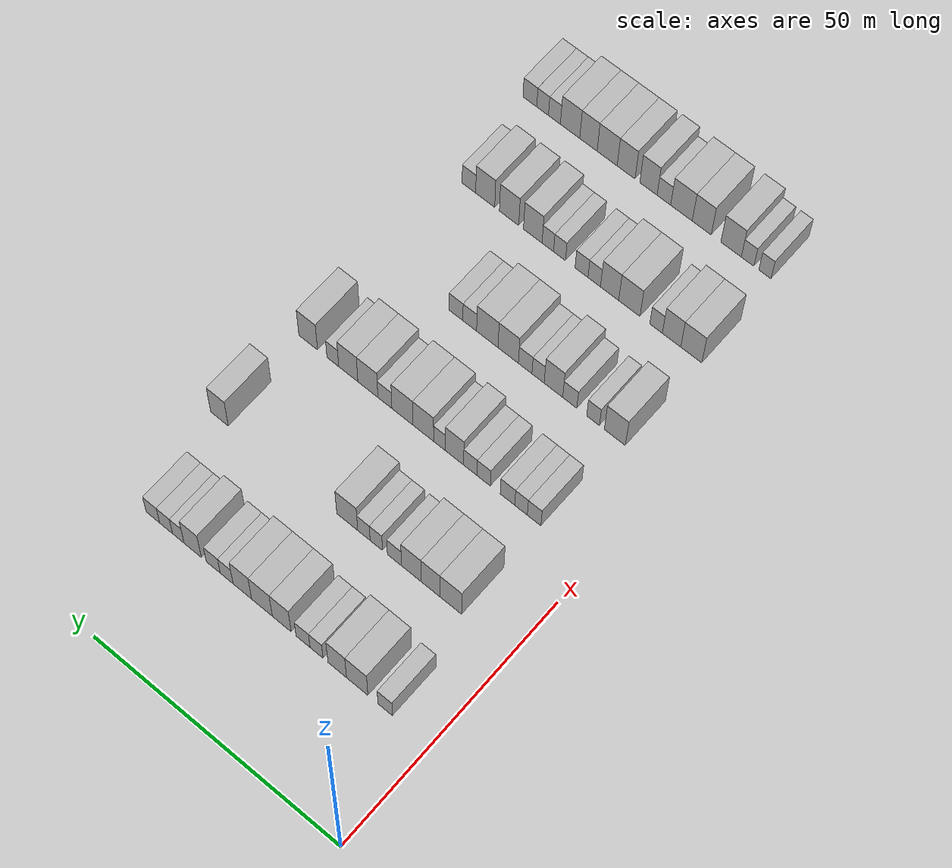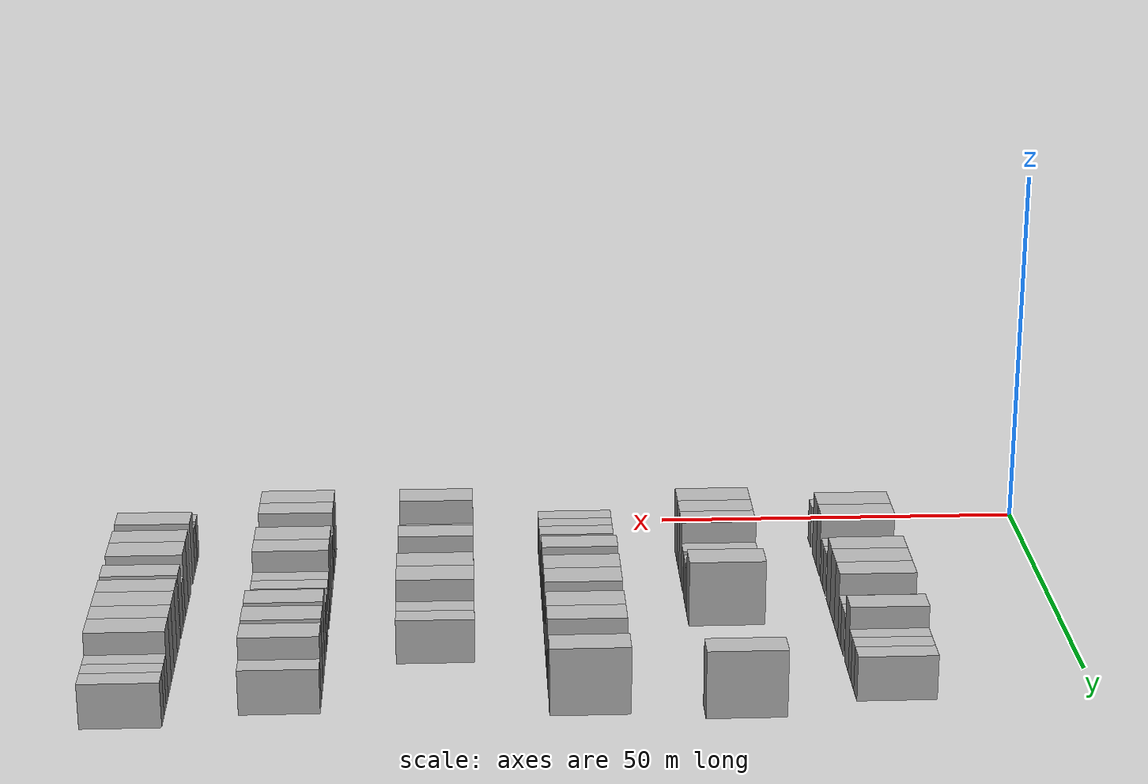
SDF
<sdf version="1.6">
 <world name="default">
  <model name="building_78">
   <static>1</static>
   <pose>25.0000 8.8354 0 0.000000 0.000000 0.000000</pose>
   <link name="link">
    <pose>0 0 3.00 0 0 0</pose>
    <collision name="collision"><geometry><box><size>10.0000 2.8979 6.0000</size></box></geometry></collision>
    <visual name="visual">
     <cast_shadows>0</cast_shadows>
     <geometry><box><size>10.0000 2.8979 6.0000</size></box></geometry>
     <material>
      <script>
       <uri>model://HANNAS_wall/materials/scripts</uri>
       <uri>model://HANNAS_wall/materials/textures</uri>
       <name>vrc/HANNAS_wall</name>
      </script>
     </material>
    </visual>
   </link>
  </model>
  <model name="building_79">
   <static>1</static>
   <pose>25.0000 14.4239 0 0.000000 0.000000 0.000000</pose>
   <link name="link">
    <pose>0 0 4.50 0 0 0</pose>
    <collision name="collision"><geometry><box><size>10.0000 4.2790 9.0000</size></box></geometry></collision>
    <visual name="visual">
     <cast_shadows>0</cast_shadows>
     <geometry><box><size>10.0000 4.2790 9.0000</size></box></geometry>
     <material>
      <script>
       <uri>model://HANNAS_wall/materials/scripts</uri>
       <uri>model://HANNAS_wall/materials/textures</uri>
       <name>vrc/HANNAS_wall</name>
      </script>
     </material>
    </visual>
   </link>
  </model>
  <model name="building_80">
   <static>1</static>
   <pose>25.0000 18.4285 0 0.000000 0.000000 0.000000</pose>
   <link name="link">
    <pose>0 0 4.50 0 0 0</pose>
    <collision name="collision"><geometry><box><size>10.0000 3.7302 9.0000</size></box></geometry></collision>
    <visual name="visual">
     <cast_shadows>0</cast_shadows>
     <geometry><box><size>10.0000 3.7302 9.0000</size></box></geometry>
     <material>
      <script>
       <uri>model://HANNAS_wall/materials/scripts</uri>
       <uri>model://HANNAS_wall/materials/textures</uri>
       <name>vrc/HANNAS_wall</name>
      </script>
     </material>
    </visual>
   </link>
  </model>
  <model name="building_81">
   <static>1</static>
   <pose>25.0000 22.6097 0 0.000000 0.000000 0.000000</pose>
   <link name="link">
    <pose>0 0 3.00 0 0 0</pose>
    <collision name="collision"><geometry><box><size>10.0000 2.6323 6.0000</size></box></geometry></collision>
    <visual name="visual">
     <cast_shadows>0</cast_shadows>
     <geometry><box><size>10.0000 2.6323 6.0000</size></box></geometry>
     <material>
      <script>
       <uri>model://HANNAS_wall/materials/scripts</uri>
       <uri>model://HANNAS_wall/materials/textures</uri>
       <name>vrc/HANNAS_wall</name>
      </script>
     </material>
    </visual>
   </link>
  </model>
  <model name="building_82">
   <static>1</static>
   <pose>25.0000 25.3507 0 0.000000 0.000000 0.000000</pose>
   <link name="link">
    <pose>0 0 3.00 0 0 0</pose>
    <collision name="collision"><geometry><box><size>10.0000 2.8498 6.0000</size></box></geometry></collision>
    <visual name="visual">
     <cast_shadows>0</cast_shadows>
     <geometry><box><size>10.0000 2.8498 6.0000</size></box></geometry>
     <material>
      <script>
       <uri>model://HANNAS_wall/materials/scripts</uri>
       <uri>model://HANNAS_wall/materials/textures</uri>
       <name>vrc/HANNAS_wall</name>
      </script>
     </material>
    </visual>
   </link>
  </model>
  <model name="building_83">
   <static>1</static>
   <pose>25.0000 29.6966 0 0.000000 0.000000 0.000000</pose>
   <link name="link">
    <pose>0 0 4.50 0 0 0</pose>
    <collision name="collision"><geometry><box><size>10.0000 3.8418 9.0000</size></box></geometry></collision>
    <visual name="visual">
     <cast_shadows>0</cast_shadows>
     <geometry><box><size>10.0000 3.8418 9.0000</size></box></geometry>
     <material>
      <script>
       <uri>model://HANNAS_wall/materials/scripts</uri>
       <uri>model://HANNAS_wall/materials/textures</uri>
       <name>vrc/HANNAS_wall</name>
      </script>
     </material>
    </visual>
   </link>
  </model>
  <model name="building_84">
   <static>1</static>
   <pose>25.0000 33.7455 0 0.000000 0.000000 0.000000</pose>
   <link name="link">
    <pose>0 0 4.50 0 0 0</pose>
    <collision name="collision"><geometry><box><size>10.0000 4.2562 9.0000</size></box></geometry></collision>
    <visual name="visual">
     <cast_shadows>0</cast_shadows>
     <geometry><box><size>10.0000 4.2562 9.0000</size></box></geometry>
     <material>
      <script>
       <uri>model://HANNAS_wall/materials/scripts</uri>
       <uri>model://HANNAS_wall/materials/textures</uri>
       <name>vrc/HANNAS_wall</name>
      </script>
     </material>
    </visual>
   </link>
  </model>
  <model name="building_85">
   <static>1</static>
   <pose>25.0000 37.7928 0 0.000000 0.000000 0.000000</pose>
   <link name="link">
    <pose>0 0 4.50 0 0 0</pose>
    <collision name="collision"><geometry><box><size>10.0000 3.8383 9.0000</size></box></geometry></collision>
    <visual name="visual">
     <cast_shadows>0</cast_shadows>
     <geometry><box><size>10.0000 3.8383 9.0000</size></box></geometry>
     <material>
      <script>
       <uri>model://HANNAS_wall/materials/scripts</uri>
       <uri>model://HANNAS_wall/materials/textures</uri>
       <name>vrc/HANNAS_wall</name>
      </script>
     </material>
    </visual>
   </link>
  </model>
  <model name="building_86">
   <static>1</static>
   <pose>25.0000 41.0383 0 0.000000 0.000000 0.000000</pose>
   <link name="link">
    <pose>0 0 3.00 0 0 0</pose>
    <collision name="collision"><geometry><box><size>10.0000 2.6528 6.0000</size></box></geometry></collision>
    <visual name="visual">
     <cast_shadows>0</cast_shadows>
     <geometry><box><size>10.0000 2.6528 6.0000</size></box></geometry>
     <material>
      <script>
       <uri>model://HANNAS_wall/materials/scripts</uri>
       <uri>model://HANNAS_wall/materials/textures</uri>
       <name>vrc/HANNAS_wall</name>
      </script>
     </material>
    </visual>
   </link>
  </model>
  <model name="building_87">
   <static>1</static>
   <pose>25.0000 43.8298 0 0.000000 0.000000 0.000000</pose>
   <link name="link">
    <pose>0 0 3.00 0 0 0</pose>
    <collision name="collision"><geometry><box><size>10.0000 2.9301 6.0000</size></box></geometry></collision>
    <visual name="visual">
     <cast_shadows>0</cast_shadows>
     <geometry><box><size>10.0000 2.9301 6.0000</size></box></geometry>
     <material>
      <script>
       <uri>model://HANNAS_wall/materials/scripts</uri>
       <uri>model://HANNAS_wall/materials/textures</uri>
       <name>vrc/HANNAS_wall</name>
      </script>
     </material>
    </visual>
   </link>
  </model>
  <model name="building_88">
   <static>1</static>
   <pose>25.0000 48.1031 0 0.000000 0.000000 0.000000</pose>
   <link name="link">
    <pose>0 0 4.50 0 0 0</pose>
    <collision name="collision"><geometry><box><size>10.0000 3.6164 9.0000</size></box></geometry></collision>
    <visual name="visual">
     <cast_shadows>0</cast_shadows>
     <geometry><box><size>10.0000 3.6164 9.0000</size></box></geometry>
     <material>
      <script>
       <uri>model://HANNAS_wall/materials/scripts</uri>
       <uri>model://HANNAS_wall/materials/textures</uri>
       <name>vrc/HANNAS_wall</name>
      </script>
     </material>
    </visual>
   </link>
  </model>
  <model name="building_89">
   <static>1</static>
   <pose>25.0000 51.1237 0 0.000000 0.000000 0.000000</pose>
   <link name="link">
    <pose>0 0 3.00 0 0 0</pose>
    <collision name="collision"><geometry><box><size>10.0000 2.4249 6.0000</size></box></geometry></collision>
    <visual name="visual">
     <cast_shadows>0</cast_shadows>
     <geometry><box><size>10.0000 2.4249 6.0000</size></box></geometry>
     <material>
      <script>
       <uri>model://HANNAS_wall/materials/scripts</uri>
       <uri>model://HANNAS_wall/materials/textures</uri>
       <name>vrc/HANNAS_wall</name>
      </script>
     </material>
    </visual>
   </link>
  </model>
  <model name="building_90">
   <static>1</static>
   <pose>25.0000 53.6947 0 0.000000 0.000000 0.000000</pose>
   <link name="link">
    <pose>0 0 3.00 0 0 0</pose>
    <collision name="collision"><geometry><box><size>10.0000 2.7171 6.0000</size></box></geometry></collision>
    <visual name="visual">
     <cast_shadows>0</cast_shadows>
     <geometry><box><size>10.0000 2.7171 6.0000</size></box></geometry>
     <material>
      <script>
       <uri>model://HANNAS_wall/materials/scripts</uri>
       <uri>model://HANNAS_wall/materials/textures</uri>
       <name>vrc/HANNAS_wall</name>
      </script>
     </material>
    </visual>
   </link>
  </model>
  <model name="building_91">
   <static>1</static>
   <pose>25.0000 56.4846 0 0.000000 0.000000 0.000000</pose>
   <link name="link">
    <pose>0 0 3.00 0 0 0</pose>
    <collision name="collision"><geometry><box><size>10.0000 2.8627 6.0000</size></box></geometry></collision>
    <visual name="visual">
     <cast_shadows>0</cast_shadows>
     <geometry><box><size>10.0000 2.8627 6.0000</size></box></geometry>
     <material>
      <script>
       <uri>model://HANNAS_wall/materials/scripts</uri>
       <uri>model://HANNAS_wall/materials/textures</uri>
       <name>vrc/HANNAS_wall</name>
      </script>
     </material>
    </visual>
   </link>
  </model>
  <model name="building_248">
   <static>1</static>
   <pose>44.0000 12.1565 0 0.000000 0.000000 0.000000</pose>
   <link name="link">
    <pose>0 0 4.50 0 0 0</pose>
    <collision name="collision"><geometry><box><size>10.0000 4.3820 9.0000</size></box></geometry></collision>
    <visual name="visual">
     <cast_shadows>0</cast_shadows>
     <geometry><box><size>10.0000 4.3820 9.0000</size></box></geometry>
     <material>
      <script>
       <uri>model://HANNAS_wall/materials/scripts</uri>
       <uri>model://HANNAS_wall/materials/textures</uri>
       <name>vrc/HANNAS_wall</name>
      </script>
     </material>
    </visual>
   </link>
  </model>
  <model name="building_249">
   <static>1</static>
   <pose>44.0000 16.2262 0 0.000000 0.000000 0.000000</pose>
   <link name="link">
    <pose>0 0 4.50 0 0 0</pose>
    <collision name="collision"><geometry><box><size>10.0000 3.7574 9.0000</size></box></geometry></collision>
    <visual name="visual">
     <cast_shadows>0</cast_shadows>
     <geometry><box><size>10.0000 3.7574 9.0000</size></box></geometry>
     <material>
      <script>
       <uri>model://HANNAS_wall/materials/scripts</uri>
       <uri>model://HANNAS_wall/materials/textures</uri>
       <name>vrc/HANNAS_wall</name>
      </script>
     </material>
    </visual>
   </link>
  </model>
  <model name="building_250">
   <static>1</static>
   <pose>44.0000 20.0991 0 0.000000 0.000000 0.000000</pose>
   <link name="link">
    <pose>0 0 4.50 0 0 0</pose>
    <collision name="collision"><geometry><box><size>10.0000 3.9885 9.0000</size></box></geometry></collision>
    <visual name="visual">
     <cast_shadows>0</cast_shadows>
     <geometry><box><size>10.0000 3.9885 9.0000</size></box></geometry>
     <material>
      <script>
       <uri>model://HANNAS_wall/materials/scripts</uri>
       <uri>model://HANNAS_wall/materials/textures</uri>
       <name>vrc/HANNAS_wall</name>
      </script>
     </material>
    </visual>
   </link>
  </model>
  <model name="building_251">
   <static>1</static>
   <pose>44.0000 23.5281 0 0.000000 0.000000 0.000000</pose>
   <link name="link">
    <pose>0 0 3.00 0 0 0</pose>
    <collision name="collision"><geometry><box><size>10.0000 2.8695 6.0000</size></box></geometry></collision>
    <visual name="visual">
     <cast_shadows>0</cast_shadows>
     <geometry><box><size>10.0000 2.8695 6.0000</size></box></geometry>
     <material>
      <script>
       <uri>model://HANNAS_wall/materials/scripts</uri>
       <uri>model://HANNAS_wall/materials/textures</uri>
       <name>vrc/HANNAS_wall</name>
      </script>
     </material>
    </visual>
   </link>
  </model>
  <model name="building_252">
   <static>1</static>
   <pose>44.0000 27.2250 0 0.000000 0.000000 0.000000</pose>
   <link name="link">
    <pose>0 0 3.00 0 0 0</pose>
    <collision name="collision"><geometry><box><size>10.0000 2.5243 6.0000</size></box></geometry></collision>
    <visual name="visual">
     <cast_shadows>0</cast_shadows>
     <geometry><box><size>10.0000 2.5243 6.0000</size></box></geometry>
     <material>
      <script>
       <uri>model://HANNAS_wall/materials/scripts</uri>
       <uri>model://HANNAS_wall/materials/textures</uri>
       <name>vrc/HANNAS_wall</name>
      </script>
     </material>
    </visual>
   </link>
  </model>
  <model name="building_253">
   <static>1</static>
   <pose>44.0000 29.7634 0 0.000000 0.000000 0.000000</pose>
   <link name="link">
    <pose>0 0 3.00 0 0 0</pose>
    <collision name="collision"><geometry><box><size>10.0000 2.5524 6.0000</size></box></geometry></collision>
    <visual name="visual">
     <cast_shadows>0</cast_shadows>
     <geometry><box><size>10.0000 2.5524 6.0000</size></box></geometry>
     <material>
      <script>
       <uri>model://HANNAS_wall/materials/scripts</uri>
       <uri>model://HANNAS_wall/materials/textures</uri>
       <name>vrc/HANNAS_wall</name>
      </script>
     </material>
    </visual>
   </link>
  </model>
  <model name="building_254">
   <static>1</static>
   <pose>44.0000 33.1895 0 0.000000 0.000000 0.000000</pose>
   <link name="link">
    <pose>0 0 4.50 0 0 0</pose>
    <collision name="collision"><geometry><box><size>10.0000 4.2998 9.0000</size></box></geometry></collision>
    <visual name="visual">
     <cast_shadows>0</cast_shadows>
     <geometry><box><size>10.0000 4.2998 9.0000</size></box></geometry>
     <material>
      <script>
       <uri>model://HANNAS_wall/materials/scripts</uri>
       <uri>model://HANNAS_wall/materials/textures</uri>
       <name>vrc/HANNAS_wall</name>
      </script>
     </material>
    </visual>
   </link>
  </model>
  <model name="building_255">
   <static>1</static>
   <pose>44.0000 59.9753 0 0.000000 0.000000 0.000000</pose>
   <link name="link">
    <pose>0 0 4.50 0 0 0</pose>
    <collision name="collision"><geometry><box><size>10.0000 3.7572 9.0000</size></box></geometry></collision>
    <visual name="visual">
     <cast_shadows>0</cast_shadows>
     <geometry><box><size>10.0000 3.7572 9.0000</size></box></geometry>
     <material>
      <script>
       <uri>model://HANNAS_wall/materials/scripts</uri>
       <uri>model://HANNAS_wall/materials/textures</uri>
       <name>vrc/HANNAS_wall</name>
      </script>
     </material>
    </visual>
   </link>
  </model>
  <model name="building_419">
   <static>1</static>
   <pose>63.0000 11.4348 0 0.000000 0.000000 0.000000</pose>
   <link name="link">
    <pose>0 0 3.00 0 0 0</pose>
    <collision name="collision"><geometry><box><size>10.0000 2.7312 6.0000</size></box></geometry></collision>
    <visual name="visual">
     <cast_shadows>0</cast_shadows>
     <geometry><box><size>10.0000 2.7312 6.0000</size></box></geometry>
     <material>
      <script>
       <uri>model://HANNAS_wall/materials/scripts</uri>
       <uri>model://HANNAS_wall/materials/textures</uri>
       <name>vrc/HANNAS_wall</name>
      </script>
     </material>
    </visual>
   </link>
  </model>
  <model name="building_420">
   <static>1</static>
   <pose>63.0000 14.0735 0 0.000000 0.000000 0.000000</pose>
   <link name="link">
    <pose>0 0 3.00 0 0 0</pose>
    <collision name="collision"><geometry><box><size>10.0000 2.5461 6.0000</size></box></geometry></collision>
    <visual name="visual">
     <cast_shadows>0</cast_shadows>
     <geometry><box><size>10.0000 2.5461 6.0000</size></box></geometry>
     <material>
      <script>
       <uri>model://HANNAS_wall/materials/scripts</uri>
       <uri>model://HANNAS_wall/materials/textures</uri>
       <name>vrc/HANNAS_wall</name>
      </script>
     </material>
    </visual>
   </link>
  </model>
  <model name="building_421">
   <static>1</static>
   <pose>63.0000 16.8148 0 0.000000 0.000000 0.000000</pose>
   <link name="link">
    <pose>0 0 3.00 0 0 0</pose>
    <collision name="collision"><geometry><box><size>10.0000 2.9365 6.0000</size></box></geometry></collision>
    <visual name="visual">
     <cast_shadows>0</cast_shadows>
     <geometry><box><size>10.0000 2.9365 6.0000</size></box></geometry>
     <material>
      <script>
       <uri>model://HANNAS_wall/materials/scripts</uri>
       <uri>model://HANNAS_wall/materials/textures</uri>
       <name>vrc/HANNAS_wall</name>
      </script>
     </material>
    </visual>
   </link>
  </model>
  <model name="building_422">
   <static>1</static>
   <pose>63.0000 21.6470 0 0.000000 0.000000 0.000000</pose>
   <link name="link">
    <pose>0 0 3.00 0 0 0</pose>
    <collision name="collision"><geometry><box><size>10.0000 2.7280 6.0000</size></box></geometry></collision>
    <visual name="visual">
     <cast_shadows>0</cast_shadows>
     <geometry><box><size>10.0000 2.7280 6.0000</size></box></geometry>
     <material>
      <script>
       <uri>model://HANNAS_wall/materials/scripts</uri>
       <uri>model://HANNAS_wall/materials/textures</uri>
       <name>vrc/HANNAS_wall</name>
      </script>
     </material>
    </visual>
   </link>
  </model>
  <model name="building_423">
   <static>1</static>
   <pose>63.0000 24.3836 0 0.000000 0.000000 0.000000</pose>
   <link name="link">
    <pose>0 0 3.00 0 0 0</pose>
    <collision name="collision"><geometry><box><size>10.0000 2.7452 6.0000</size></box></geometry></collision>
    <visual name="visual">
     <cast_shadows>0</cast_shadows>
     <geometry><box><size>10.0000 2.7452 6.0000</size></box></geometry>
     <material>
      <script>
       <uri>model://HANNAS_wall/materials/scripts</uri>
       <uri>model://HANNAS_wall/materials/textures</uri>
       <name>vrc/HANNAS_wall</name>
      </script>
     </material>
    </visual>
   </link>
  </model>
  <model name="building_424">
   <static>1</static>
   <pose>63.0000 27.6238 0 0.000000 0.000000 0.000000</pose>
   <link name="link">
    <pose>0 0 4.50 0 0 0</pose>
    <collision name="collision"><geometry><box><size>10.0000 3.7352 9.0000</size></box></geometry></collision>
    <visual name="visual">
     <cast_shadows>0</cast_shadows>
     <geometry><box><size>10.0000 3.7352 9.0000</size></box></geometry>
     <material>
      <script>
       <uri>model://HANNAS_wall/materials/scripts</uri>
       <uri>model://HANNAS_wall/materials/textures</uri>
       <name>vrc/HANNAS_wall</name>
      </script>
     </material>
    </visual>
   </link>
  </model>
  <model name="building_425">
   <static>1</static>
   <pose>63.0000 30.7046 0 0.000000 0.000000 0.000000</pose>
   <link name="link">
    <pose>0 0 3.00 0 0 0</pose>
    <collision name="collision"><geometry><box><size>10.0000 2.4265 6.0000</size></box></geometry></collision>
    <visual name="visual">
     <cast_shadows>0</cast_shadows>
     <geometry><box><size>10.0000 2.4265 6.0000</size></box></geometry>
     <material>
      <script>
       <uri>model://HANNAS_wall/materials/scripts</uri>
       <uri>model://HANNAS_wall/materials/textures</uri>
       <name>vrc/HANNAS_wall</name>
      </script>
     </material>
    </visual>
   </link>
  </model>
  <model name="building_426">
   <static>1</static>
   <pose>63.0000 34.0472 0 0.000000 0.000000 0.000000</pose>
   <link name="link">
    <pose>0 0 4.50 0 0 0</pose>
    <collision name="collision"><geometry><box><size>10.0000 4.2586 9.0000</size></box></geometry></collision>
    <visual name="visual">
     <cast_shadows>0</cast_shadows>
     <geometry><box><size>10.0000 4.2586 9.0000</size></box></geometry>
     <material>
      <script>
       <uri>model://HANNAS_wall/materials/scripts</uri>
       <uri>model://HANNAS_wall/materials/textures</uri>
       <name>vrc/HANNAS_wall</name>
      </script>
     </material>
    </visual>
   </link>
  </model>
  <model name="building_427">
   <static>1</static>
   <pose>63.0000 38.3797 0 0.000000 0.000000 0.000000</pose>
   <link name="link">
    <pose>0 0 4.50 0 0 0</pose>
    <collision name="collision"><geometry><box><size>10.0000 4.4065 9.0000</size></box></geometry></collision>
    <visual name="visual">
     <cast_shadows>0</cast_shadows>
     <geometry><box><size>10.0000 4.4065 9.0000</size></box></geometry>
     <material>
      <script>
       <uri>model://HANNAS_wall/materials/scripts</uri>
       <uri>model://HANNAS_wall/materials/textures</uri>
       <name>vrc/HANNAS_wall</name>
      </script>
     </material>
    </visual>
   </link>
  </model>
  <model name="building_428">
   <static>1</static>
   <pose>63.0000 42.0469 0 0.000000 0.000000 0.000000</pose>
   <link name="link">
    <pose>0 0 3.00 0 0 0</pose>
    <collision name="collision"><geometry><box><size>10.0000 2.9278 6.0000</size></box></geometry></collision>
    <visual name="visual">
     <cast_shadows>0</cast_shadows>
     <geometry><box><size>10.0000 2.9278 6.0000</size></box></geometry>
     <material>
      <script>
       <uri>model://HANNAS_wall/materials/scripts</uri>
       <uri>model://HANNAS_wall/materials/textures</uri>
       <name>vrc/HANNAS_wall</name>
      </script>
     </material>
    </visual>
   </link>
  </model>
  <model name="building_429">
   <static>1</static>
   <pose>63.0000 45.6141 0 0.000000 0.000000 0.000000</pose>
   <link name="link">
    <pose>0 0 4.50 0 0 0</pose>
    <collision name="collision"><geometry><box><size>10.0000 4.2065 9.0000</size></box></geometry></collision>
    <visual name="visual">
     <cast_shadows>0</cast_shadows>
     <geometry><box><size>10.0000 4.2065 9.0000</size></box></geometry>
     <material>
      <script>
       <uri>model://HANNAS_wall/materials/scripts</uri>
       <uri>model://HANNAS_wall/materials/textures</uri>
       <name>vrc/HANNAS_wall</name>
      </script>
     </material>
    </visual>
   </link>
  </model>
  <model name="building_430">
   <static>1</static>
   <pose>63.0000 49.7347 0 0.000000 0.000000 0.000000</pose>
   <link name="link">
    <pose>0 0 4.50 0 0 0</pose>
    <collision name="collision"><geometry><box><size>10.0000 4.0347 9.0000</size></box></geometry></collision>
    <visual name="visual">
     <cast_shadows>0</cast_shadows>
     <geometry><box><size>10.0000 4.0347 9.0000</size></box></geometry>
     <material>
      <script>
       <uri>model://HANNAS_wall/materials/scripts</uri>
       <uri>model://HANNAS_wall/materials/textures</uri>
       <name>vrc/HANNAS_wall</name>
      </script>
     </material>
    </visual>
   </link>
  </model>
  <model name="building_431">
   <static>1</static>
   <pose>63.0000 52.9988 0 0.000000 0.000000 0.000000</pose>
   <link name="link">
    <pose>0 0 3.00 0 0 0</pose>
    <collision name="collision"><geometry><box><size>10.0000 2.4934 6.0000</size></box></geometry></collision>
    <visual name="visual">
     <cast_shadows>0</cast_shadows>
     <geometry><box><size>10.0000 2.4934 6.0000</size></box></geometry>
     <material>
      <script>
       <uri>model://HANNAS_wall/materials/scripts</uri>
       <uri>model://HANNAS_wall/materials/textures</uri>
       <name>vrc/HANNAS_wall</name>
      </script>
     </material>
    </visual>
   </link>
  </model>
  <model name="building_432">
   <static>1</static>
   <pose>63.0000 58.2437 0 0.000000 0.000000 0.000000</pose>
   <link name="link">
    <pose>0 0 4.50 0 0 0</pose>
    <collision name="collision"><geometry><box><size>10.0000 3.9964 9.0000</size></box></geometry></collision>
    <visual name="visual">
     <cast_shadows>0</cast_shadows>
     <geometry><box><size>10.0000 3.9964 9.0000</size></box></geometry>
     <material>
      <script>
       <uri>model://HANNAS_wall/materials/scripts</uri>
       <uri>model://HANNAS_wall/materials/textures</uri>
       <name>vrc/HANNAS_wall</name>
      </script>
     </material>
    </visual>
   </link>
  </model>
  <model name="building_603">
   <static>1</static>
   <pose>82.0000 10.7911 0 0.000000 0.000000 0.000000</pose>
   <link name="link">
    <pose>0 0 4.50 0 0 0</pose>
    <collision name="collision"><geometry><box><size>10.0000 4.2556 9.0000</size></box></geometry></collision>
    <visual name="visual">
     <cast_shadows>0</cast_shadows>
     <geometry><box><size>10.0000 4.2556 9.0000</size></box></geometry>
     <material>
      <script>
       <uri>model://HANNAS_wall/materials/scripts</uri>
       <uri>model://HANNAS_wall/materials/textures</uri>
       <name>vrc/HANNAS_wall</name>
      </script>
     </material>
    </visual>
   </link>
  </model>
  <model name="building_604">
   <static>1</static>
   <pose>82.0000 15.2117 0 0.000000 0.000000 0.000000</pose>
   <link name="link">
    <pose>0 0 3.00 0 0 0</pose>
    <collision name="collision"><geometry><box><size>10.0000 2.5856 6.0000</size></box></geometry></collision>
    <visual name="visual">
     <cast_shadows>0</cast_shadows>
     <geometry><box><size>10.0000 2.5856 6.0000</size></box></geometry>
     <material>
      <script>
       <uri>model://HANNAS_wall/materials/scripts</uri>
       <uri>model://HANNAS_wall/materials/textures</uri>
       <name>vrc/HANNAS_wall</name>
      </script>
     </material>
    </visual>
   </link>
  </model>
  <model name="building_605">
   <static>1</static>
   <pose>82.0000 19.9462 0 0.000000 0.000000 0.000000</pose>
   <link name="link">
    <pose>0 0 3.00 0 0 0</pose>
    <collision name="collision"><geometry><box><size>10.0000 2.8834 6.0000</size></box></geometry></collision>
    <visual name="visual">
     <cast_shadows>0</cast_shadows>
     <geometry><box><size>10.0000 2.8834 6.0000</size></box></geometry>
     <material>
      <script>
       <uri>model://HANNAS_wall/materials/scripts</uri>
       <uri>model://HANNAS_wall/materials/textures</uri>
       <name>vrc/HANNAS_wall</name>
      </script>
     </material>
    </visual>
   </link>
  </model>
  <model name="building_606">
   <static>1</static>
   <pose>82.0000 23.2875 0 0.000000 0.000000 0.000000</pose>
   <link name="link">
    <pose>0 0 4.50 0 0 0</pose>
    <collision name="collision"><geometry><box><size>10.0000 3.7993 9.0000</size></box></geometry></collision>
    <visual name="visual">
     <cast_shadows>0</cast_shadows>
     <geometry><box><size>10.0000 3.7993 9.0000</size></box></geometry>
     <material>
      <script>
       <uri>model://HANNAS_wall/materials/scripts</uri>
       <uri>model://HANNAS_wall/materials/textures</uri>
       <name>vrc/HANNAS_wall</name>
      </script>
     </material>
    </visual>
   </link>
  </model>
  <model name="building_607">
   <static>1</static>
   <pose>82.0000 26.4459 0 0.000000 0.000000 0.000000</pose>
   <link name="link">
    <pose>0 0 3.00 0 0 0</pose>
    <collision name="collision"><geometry><box><size>10.0000 2.5176 6.0000</size></box></geometry></collision>
    <visual name="visual">
     <cast_shadows>0</cast_shadows>
     <geometry><box><size>10.0000 2.5176 6.0000</size></box></geometry>
     <material>
      <script>
       <uri>model://HANNAS_wall/materials/scripts</uri>
       <uri>model://HANNAS_wall/materials/textures</uri>
       <name>vrc/HANNAS_wall</name>
      </script>
     </material>
    </visual>
   </link>
  </model>
  <model name="building_608">
   <static>1</static>
   <pose>82.0000 29.1063 0 0.000000 0.000000 0.000000</pose>
   <link name="link">
    <pose>0 0 3.00 0 0 0</pose>
    <collision name="collision"><geometry><box><size>10.0000 2.8032 6.0000</size></box></geometry></collision>
    <visual name="visual">
     <cast_shadows>0</cast_shadows>
     <geometry><box><size>10.0000 2.8032 6.0000</size></box></geometry>
     <material>
      <script>
       <uri>model://HANNAS_wall/materials/scripts</uri>
       <uri>model://HANNAS_wall/materials/textures</uri>
       <name>vrc/HANNAS_wall</name>
      </script>
     </material>
    </visual>
   </link>
  </model>
  <model name="building_609">
   <static>1</static>
   <pose>82.0000 32.6181 0 0.000000 0.000000 0.000000</pose>
   <link name="link">
    <pose>0 0 4.50 0 0 0</pose>
    <collision name="collision"><geometry><box><size>10.0000 4.2204 9.0000</size></box></geometry></collision>
    <visual name="visual">
     <cast_shadows>0</cast_shadows>
     <geometry><box><size>10.0000 4.2204 9.0000</size></box></geometry>
     <material>
      <script>
       <uri>model://HANNAS_wall/materials/scripts</uri>
       <uri>model://HANNAS_wall/materials/textures</uri>
       <name>vrc/HANNAS_wall</name>
      </script>
     </material>
    </visual>
   </link>
  </model>
  <model name="building_610">
   <static>1</static>
   <pose>82.0000 36.9625 0 0.000000 0.000000 0.000000</pose>
   <link name="link">
    <pose>0 0 4.50 0 0 0</pose>
    <collision name="collision"><geometry><box><size>10.0000 4.4684 9.0000</size></box></geometry></collision>
    <visual name="visual">
     <cast_shadows>0</cast_shadows>
     <geometry><box><size>10.0000 4.4684 9.0000</size></box></geometry>
     <material>
      <script>
       <uri>model://HANNAS_wall/materials/scripts</uri>
       <uri>model://HANNAS_wall/materials/textures</uri>
       <name>vrc/HANNAS_wall</name>
      </script>
     </material>
    </visual>
   </link>
  </model>
  <model name="building_611">
   <static>1</static>
   <pose>82.0000 40.6374 0 0.000000 0.000000 0.000000</pose>
   <link name="link">
    <pose>0 0 3.00 0 0 0</pose>
    <collision name="collision"><geometry><box><size>10.0000 2.8814 6.0000</size></box></geometry></collision>
    <visual name="visual">
     <cast_shadows>0</cast_shadows>
     <geometry><box><size>10.0000 2.8814 6.0000</size></box></geometry>
     <material>
      <script>
       <uri>model://HANNAS_wall/materials/scripts</uri>
       <uri>model://HANNAS_wall/materials/textures</uri>
       <name>vrc/HANNAS_wall</name>
      </script>
     </material>
    </visual>
   </link>
  </model>
  <model name="building_612">
   <static>1</static>
   <pose>82.0000 43.5106 0 0.000000 0.000000 0.000000</pose>
   <link name="link">
    <pose>0 0 3.00 0 0 0</pose>
    <collision name="collision"><geometry><box><size>10.0000 2.8649 6.0000</size></box></geometry></collision>
    <visual name="visual">
     <cast_shadows>0</cast_shadows>
     <geometry><box><size>10.0000 2.8649 6.0000</size></box></geometry>
     <material>
      <script>
       <uri>model://HANNAS_wall/materials/scripts</uri>
       <uri>model://HANNAS_wall/materials/textures</uri>
       <name>vrc/HANNAS_wall</name>
      </script>
     </material>
    </visual>
   </link>
  </model>
  <model name="building_768">
   <static>1</static>
   <pose>101.0000 10.5797 0 0.000000 0.000000 0.000000</pose>
   <link name="link">
    <pose>0 0 4.50 0 0 0</pose>
    <collision name="collision"><geometry><box><size>10.0000 4.2688 9.0000</size></box></geometry></collision>
    <visual name="visual">
     <cast_shadows>0</cast_shadows>
     <geometry><box><size>10.0000 4.2688 9.0000</size></box></geometry>
     <material>
      <script>
       <uri>model://HANNAS_wall/materials/scripts</uri>
       <uri>model://HANNAS_wall/materials/textures</uri>
       <name>vrc/HANNAS_wall</name>
      </script>
     </material>
    </visual>
   </link>
  </model>
  <model name="building_769">
   <static>1</static>
   <pose>101.0000 14.5865 0 0.000000 0.000000 0.000000</pose>
   <link name="link">
    <pose>0 0 4.50 0 0 0</pose>
    <collision name="collision"><geometry><box><size>10.0000 3.7448 9.0000</size></box></geometry></collision>
    <visual name="visual">
     <cast_shadows>0</cast_shadows>
     <geometry><box><size>10.0000 3.7448 9.0000</size></box></geometry>
     <material>
      <script>
       <uri>model://HANNAS_wall/materials/scripts</uri>
       <uri>model://HANNAS_wall/materials/textures</uri>
       <name>vrc/HANNAS_wall</name>
      </script>
     </material>
    </visual>
   </link>
  </model>
  <model name="building_770">
   <static>1</static>
   <pose>101.0000 17.7500 0 0.000000 0.000000 0.000000</pose>
   <link name="link">
    <pose>0 0 3.00 0 0 0</pose>
    <collision name="collision"><geometry><box><size>10.0000 2.5822 6.0000</size></box></geometry></collision>
    <visual name="visual">
     <cast_shadows>0</cast_shadows>
     <geometry><box><size>10.0000 2.5822 6.0000</size></box></geometry>
     <material>
      <script>
       <uri>model://HANNAS_wall/materials/scripts</uri>
       <uri>model://HANNAS_wall/materials/textures</uri>
       <name>vrc/HANNAS_wall</name>
      </script>
     </material>
    </visual>
   </link>
  </model>
  <model name="building_771">
   <static>1</static>
   <pose>101.0000 23.2366 0 0.000000 0.000000 0.000000</pose>
   <link name="link">
    <pose>0 0 4.50 0 0 0</pose>
    <collision name="collision"><geometry><box><size>10.0000 4.3911 9.0000</size></box></geometry></collision>
    <visual name="visual">
     <cast_shadows>0</cast_shadows>
     <geometry><box><size>10.0000 4.3911 9.0000</size></box></geometry>
     <material>
      <script>
       <uri>model://HANNAS_wall/materials/scripts</uri>
       <uri>model://HANNAS_wall/materials/textures</uri>
       <name>vrc/HANNAS_wall</name>
      </script>
     </material>
    </visual>
   </link>
  </model>
  <model name="building_772">
   <static>1</static>
   <pose>101.0000 27.3190 0 0.000000 0.000000 0.000000</pose>
   <link name="link">
    <pose>0 0 4.50 0 0 0</pose>
    <collision name="collision"><geometry><box><size>10.0000 3.7736 9.0000</size></box></geometry></collision>
    <visual name="visual">
     <cast_shadows>0</cast_shadows>
     <geometry><box><size>10.0000 3.7736 9.0000</size></box></geometry>
     <material>
      <script>
       <uri>model://HANNAS_wall/materials/scripts</uri>
       <uri>model://HANNAS_wall/materials/textures</uri>
       <name>vrc/HANNAS_wall</name>
      </script>
     </material>
    </visual>
   </link>
  </model>
  <model name="building_773">
   <static>1</static>
   <pose>101.0000 30.4967 0 0.000000 0.000000 0.000000</pose>
   <link name="link">
    <pose>0 0 3.00 0 0 0</pose>
    <collision name="collision"><geometry><box><size>10.0000 2.5818 6.0000</size></box></geometry></collision>
    <visual name="visual">
     <cast_shadows>0</cast_shadows>
     <geometry><box><size>10.0000 2.5818 6.0000</size></box></geometry>
     <material>
      <script>
       <uri>model://HANNAS_wall/materials/scripts</uri>
       <uri>model://HANNAS_wall/materials/textures</uri>
       <name>vrc/HANNAS_wall</name>
      </script>
     </material>
    </visual>
   </link>
  </model>
  <model name="building_774">
   <static>1</static>
   <pose>101.0000 33.1427 0 0.000000 0.000000 0.000000</pose>
   <link name="link">
    <pose>0 0 3.00 0 0 0</pose>
    <collision name="collision"><geometry><box><size>10.0000 2.7103 6.0000</size></box></geometry></collision>
    <visual name="visual">
     <cast_shadows>0</cast_shadows>
     <geometry><box><size>10.0000 2.7103 6.0000</size></box></geometry>
     <material>
      <script>
       <uri>model://HANNAS_wall/materials/scripts</uri>
       <uri>model://HANNAS_wall/materials/textures</uri>
       <name>vrc/HANNAS_wall</name>
      </script>
     </material>
    </visual>
   </link>
  </model>
  <model name="building_775">
   <static>1</static>
   <pose>101.0000 37.7455 0 0.000000 0.000000 0.000000</pose>
   <link name="link">
    <pose>0 0 3.00 0 0 0</pose>
    <collision name="collision"><geometry><box><size>10.0000 2.4952 6.0000</size></box></geometry></collision>
    <visual name="visual">
     <cast_shadows>0</cast_shadows>
     <geometry><box><size>10.0000 2.4952 6.0000</size></box></geometry>
     <material>
      <script>
       <uri>model://HANNAS_wall/materials/scripts</uri>
       <uri>model://HANNAS_wall/materials/textures</uri>
       <name>vrc/HANNAS_wall</name>
      </script>
     </material>
    </visual>
   </link>
  </model>
  <model name="building_776">
   <static>1</static>
   <pose>101.0000 40.2017 0 0.000000 0.000000 0.000000</pose>
   <link name="link">
    <pose>0 0 3.00 0 0 0</pose>
    <collision name="collision"><geometry><box><size>10.0000 2.4172 6.0000</size></box></geometry></collision>
    <visual name="visual">
     <cast_shadows>0</cast_shadows>
     <geometry><box><size>10.0000 2.4172 6.0000</size></box></geometry>
     <material>
      <script>
       <uri>model://HANNAS_wall/materials/scripts</uri>
       <uri>model://HANNAS_wall/materials/textures</uri>
       <name>vrc/HANNAS_wall</name>
      </script>
     </material>
    </visual>
   </link>
  </model>
  <model name="building_777">
   <static>1</static>
   <pose>101.0000 43.3721 0 0.000000 0.000000 0.000000</pose>
   <link name="link">
    <pose>0 0 4.50 0 0 0</pose>
    <collision name="collision"><geometry><box><size>10.0000 3.9237 9.0000</size></box></geometry></collision>
    <visual name="visual">
     <cast_shadows>0</cast_shadows>
     <geometry><box><size>10.0000 3.9237 9.0000</size></box></geometry>
     <material>
      <script>
       <uri>model://HANNAS_wall/materials/scripts</uri>
       <uri>model://HANNAS_wall/materials/textures</uri>
       <name>vrc/HANNAS_wall</name>
      </script>
     </material>
    </visual>
   </link>
  </model>
  <model name="building_778">
   <static>1</static>
   <pose>101.0000 48.3864 0 0.000000 0.000000 0.000000</pose>
   <link name="link">
    <pose>0 0 4.50 0 0 0</pose>
    <collision name="collision"><geometry><box><size>10.0000 4.1049 9.0000</size></box></geometry></collision>
    <visual name="visual">
     <cast_shadows>0</cast_shadows>
     <geometry><box><size>10.0000 4.1049 9.0000</size></box></geometry>
     <material>
      <script>
       <uri>model://HANNAS_wall/materials/scripts</uri>
       <uri>model://HANNAS_wall/materials/textures</uri>
       <name>vrc/HANNAS_wall</name>
      </script>
     </material>
    </visual>
   </link>
  </model>
  <model name="building_779">
   <static>1</static>
   <pose>101.0000 53.4713 0 0.000000 0.000000 0.000000</pose>
   <link name="link">
    <pose>0 0 4.50 0 0 0</pose>
    <collision name="collision"><geometry><box><size>10.0000 4.0650 9.0000</size></box></geometry></collision>
    <visual name="visual">
     <cast_shadows>0</cast_shadows>
     <geometry><box><size>10.0000 4.0650 9.0000</size></box></geometry>
     <material>
      <script>
       <uri>model://HANNAS_wall/materials/scripts</uri>
       <uri>model://HANNAS_wall/materials/textures</uri>
       <name>vrc/HANNAS_wall</name>
      </script>
     </material>
    </visual>
   </link>
  </model>
  <model name="building_780">
   <static>1</static>
   <pose>101.0000 56.9554 0 0.000000 0.000000 0.000000</pose>
   <link name="link">
    <pose>0 0 3.00 0 0 0</pose>
    <collision name="collision"><geometry><box><size>10.0000 2.9032 6.0000</size></box></geometry></collision>
    <visual name="visual">
     <cast_shadows>0</cast_shadows>
     <geometry><box><size>10.0000 2.9032 6.0000</size></box></geometry>
     <material>
      <script>
       <uri>model://HANNAS_wall/materials/scripts</uri>
       <uri>model://HANNAS_wall/materials/textures</uri>
       <name>vrc/HANNAS_wall</name>
      </script>
     </material>
    </visual>
   </link>
  </model>
  <model name="building_936">
   <static>1</static>
   <pose>120.0000 10.5131 0 0.000000 0.000000 0.000000</pose>
   <link name="link">
    <pose>0 0 3.00 0 0 0</pose>
    <collision name="collision"><geometry><box><size>10.0000 2.4921 6.0000</size></box></geometry></collision>
    <visual name="visual">
     <cast_shadows>0</cast_shadows>
     <geometry><box><size>10.0000 2.4921 6.0000</size></box></geometry>
     <material>
      <script>
       <uri>model://HANNAS_wall/materials/scripts</uri>
       <uri>model://HANNAS_wall/materials/textures</uri>
       <name>vrc/HANNAS_wall</name>
      </script>
     </material>
    </visual>
   </link>
  </model>
  <model name="building_937">
   <static>1</static>
   <pose>120.0000 14.0491 0 0.000000 0.000000 0.000000</pose>
   <link name="link">
    <pose>0 0 3.00 0 0 0</pose>
    <collision name="collision"><geometry><box><size>10.0000 2.5799 6.0000</size></box></geometry></collision>
    <visual name="visual">
     <cast_shadows>0</cast_shadows>
     <geometry><box><size>10.0000 2.5799 6.0000</size></box></geometry>
     <material>
      <script>
       <uri>model://HANNAS_wall/materials/scripts</uri>
       <uri>model://HANNAS_wall/materials/textures</uri>
       <name>vrc/HANNAS_wall</name>
      </script>
     </material>
    </visual>
   </link>
  </model>
  <model name="building_938">
   <static>1</static>
   <pose>120.0000 17.4342 0 0.000000 0.000000 0.000000</pose>
   <link name="link">
    <pose>0 0 4.50 0 0 0</pose>
    <collision name="collision"><geometry><box><size>10.0000 4.1903 9.0000</size></box></geometry></collision>
    <visual name="visual">
     <cast_shadows>0</cast_shadows>
     <geometry><box><size>10.0000 4.1903 9.0000</size></box></geometry>
     <material>
      <script>
       <uri>model://HANNAS_wall/materials/scripts</uri>
       <uri>model://HANNAS_wall/materials/textures</uri>
       <name>vrc/HANNAS_wall</name>
      </script>
     </material>
    </visual>
   </link>
  </model>
  <model name="building_939">
   <static>1</static>
   <pose>120.0000 23.4851 0 0.000000 0.000000 0.000000</pose>
   <link name="link">
    <pose>0 0 4.50 0 0 0</pose>
    <collision name="collision"><geometry><box><size>10.0000 3.9114 9.0000</size></box></geometry></collision>
    <visual name="visual">
     <cast_shadows>0</cast_shadows>
     <geometry><box><size>10.0000 3.9114 9.0000</size></box></geometry>
     <material>
      <script>
       <uri>model://HANNAS_wall/materials/scripts</uri>
       <uri>model://HANNAS_wall/materials/textures</uri>
       <name>vrc/HANNAS_wall</name>
      </script>
     </material>
    </visual>
   </link>
  </model>
  <model name="building_940">
   <static>1</static>
   <pose>120.0000 27.6894 0 0.000000 0.000000 0.000000</pose>
   <link name="link">
    <pose>0 0 4.50 0 0 0</pose>
    <collision name="collision"><geometry><box><size>10.0000 4.4973 9.0000</size></box></geometry></collision>
    <visual name="visual">
     <cast_shadows>0</cast_shadows>
     <geometry><box><size>10.0000 4.4973 9.0000</size></box></geometry>
     <material>
      <script>
       <uri>model://HANNAS_wall/materials/scripts</uri>
       <uri>model://HANNAS_wall/materials/textures</uri>
       <name>vrc/HANNAS_wall</name>
      </script>
     </material>
    </visual>
   </link>
  </model>
  <model name="building_941">
   <static>1</static>
   <pose>120.0000 31.3554 0 0.000000 0.000000 0.000000</pose>
   <link name="link">
    <pose>0 0 3.00 0 0 0</pose>
    <collision name="collision"><geometry><box><size>10.0000 2.8346 6.0000</size></box></geometry></collision>
    <visual name="visual">
     <cast_shadows>0</cast_shadows>
     <geometry><box><size>10.0000 2.8346 6.0000</size></box></geometry>
     <material>
      <script>
       <uri>model://HANNAS_wall/materials/scripts</uri>
       <uri>model://HANNAS_wall/materials/textures</uri>
       <name>vrc/HANNAS_wall</name>
      </script>
     </material>
    </visual>
   </link>
  </model>
  <model name="building_942">
   <static>1</static>
   <pose>120.0000 34.5881 0 0.000000 0.000000 0.000000</pose>
   <link name="link">
    <pose>0 0 4.50 0 0 0</pose>
    <collision name="collision"><geometry><box><size>10.0000 3.6308 9.0000</size></box></geometry></collision>
    <visual name="visual">
     <cast_shadows>0</cast_shadows>
     <geometry><box><size>10.0000 3.6308 9.0000</size></box></geometry>
     <material>
      <script>
       <uri>model://HANNAS_wall/materials/scripts</uri>
       <uri>model://HANNAS_wall/materials/textures</uri>
       <name>vrc/HANNAS_wall</name>
      </script>
     </material>
    </visual>
   </link>
  </model>
  <model name="building_943">
   <static>1</static>
   <pose>120.0000 39.2857 0 0.000000 0.000000 0.000000</pose>
   <link name="link">
    <pose>0 0 4.50 0 0 0</pose>
    <collision name="collision"><geometry><box><size>10.0000 3.7646 9.0000</size></box></geometry></collision>
    <visual name="visual">
     <cast_shadows>0</cast_shadows>
     <geometry><box><size>10.0000 3.7646 9.0000</size></box></geometry>
     <material>
      <script>
       <uri>model://HANNAS_wall/materials/scripts</uri>
       <uri>model://HANNAS_wall/materials/textures</uri>
       <name>vrc/HANNAS_wall</name>
      </script>
     </material>
    </visual>
   </link>
  </model>
  <model name="building_944">
   <static>1</static>
   <pose>120.0000 43.2910 0 0.000000 0.000000 0.000000</pose>
   <link name="link">
    <pose>0 0 4.50 0 0 0</pose>
    <collision name="collision"><geometry><box><size>10.0000 4.2459 9.0000</size></box></geometry></collision>
    <visual name="visual">
     <cast_shadows>0</cast_shadows>
     <geometry><box><size>10.0000 4.2459 9.0000</size></box></geometry>
     <material>
      <script>
       <uri>model://HANNAS_wall/materials/scripts</uri>
       <uri>model://HANNAS_wall/materials/textures</uri>
       <name>vrc/HANNAS_wall</name>
      </script>
     </material>
    </visual>
   </link>
  </model>
  <model name="building_945">
   <static>1</static>
   <pose>120.0000 47.2653 0 0.000000 0.000000 0.000000</pose>
   <link name="link">
    <pose>0 0 4.50 0 0 0</pose>
    <collision name="collision"><geometry><box><size>10.0000 3.7027 9.0000</size></box></geometry></collision>
    <visual name="visual">
     <cast_shadows>0</cast_shadows>
     <geometry><box><size>10.0000 3.7027 9.0000</size></box></geometry>
     <material>
      <script>
       <uri>model://HANNAS_wall/materials/scripts</uri>
       <uri>model://HANNAS_wall/materials/textures</uri>
       <name>vrc/HANNAS_wall</name>
      </script>
     </material>
    </visual>
   </link>
  </model>
  <model name="building_946">
   <static>1</static>
   <pose>120.0000 51.1868 0 0.000000 0.000000 0.000000</pose>
   <link name="link">
    <pose>0 0 4.50 0 0 0</pose>
    <collision name="collision"><geometry><box><size>10.0000 4.1404 9.0000</size></box></geometry></collision>
    <visual name="visual">
     <cast_shadows>0</cast_shadows>
     <geometry><box><size>10.0000 4.1404 9.0000</size></box></geometry>
     <material>
      <script>
       <uri>model://HANNAS_wall/materials/scripts</uri>
       <uri>model://HANNAS_wall/materials/textures</uri>
       <name>vrc/HANNAS_wall</name>
      </script>
     </material>
    </visual>
   </link>
  </model>
  <model name="building_947">
   <static>1</static>
   <pose>120.0000 54.5366 0 0.000000 0.000000 0.000000</pose>
   <link name="link">
    <pose>0 0 3.00 0 0 0</pose>
    <collision name="collision"><geometry><box><size>10.0000 2.5590 6.0000</size></box></geometry></collision>
    <visual name="visual">
     <cast_shadows>0</cast_shadows>
     <geometry><box><size>10.0000 2.5590 6.0000</size></box></geometry>
     <material>
      <script>
       <uri>model://HANNAS_wall/materials/scripts</uri>
       <uri>model://HANNAS_wall/materials/textures</uri>
       <name>vrc/HANNAS_wall</name>
      </script>
     </material>
    </visual>
   </link>
  </model>
  <model name="building_948">
   <static>1</static>
   <pose>120.0000 57.0745 0 0.000000 0.000000 0.000000</pose>
   <link name="link">
    <pose>0 0 3.00 0 0 0</pose>
    <collision name="collision"><geometry><box><size>10.0000 2.5169 6.0000</size></box></geometry></collision>
    <visual name="visual">
     <cast_shadows>0</cast_shadows>
     <geometry><box><size>10.0000 2.5169 6.0000</size></box></geometry>
     <material>
      <script>
       <uri>model://HANNAS_wall/materials/scripts</uri>
       <uri>model://HANNAS_wall/materials/textures</uri>
       <name>vrc/HANNAS_wall</name>
      </script>
     </material>
    </visual>
   </link>
  </model>
  <model name="building_949">
   <static>1</static>
   <pose>120.0000 59.8228 0 0.000000 0.000000 0.000000</pose>
   <link name="link">
    <pose>0 0 3.00 0 0 0</pose>
    <collision name="collision"><geometry><box><size>10.0000 2.9796 6.0000</size></box></geometry></collision>
    <visual name="visual">
     <cast_shadows>0</cast_shadows>
     <geometry><box><size>10.0000 2.9796 6.0000</size></box></geometry>
     <material>
      <script>
       <uri>model://HANNAS_wall/materials/scripts</uri>
       <uri>model://HANNAS_wall/materials/textures</uri>
       <name>vrc/HANNAS_wall</name>
      </script>
     </material>
    </visual>
   </link>
  </model>
 </world>
</sdf>
